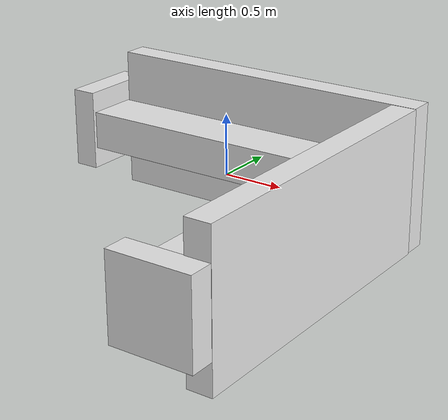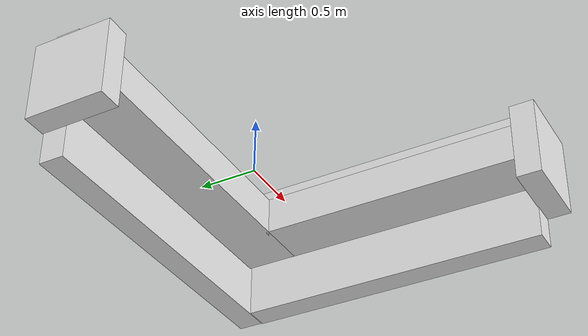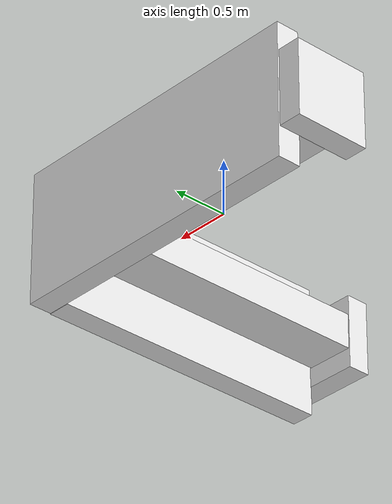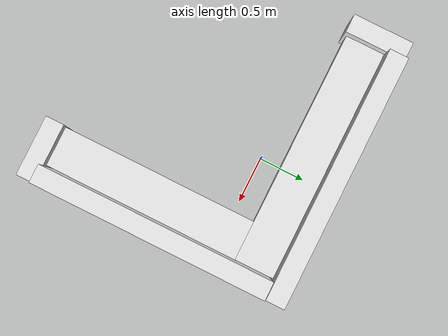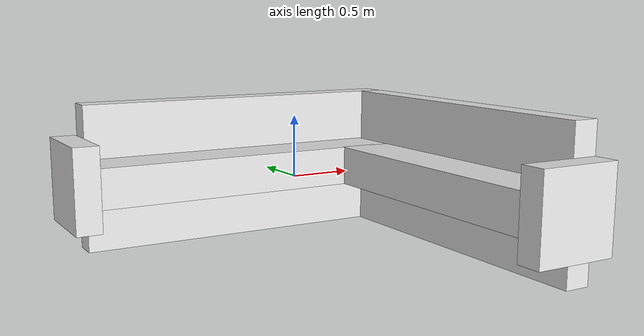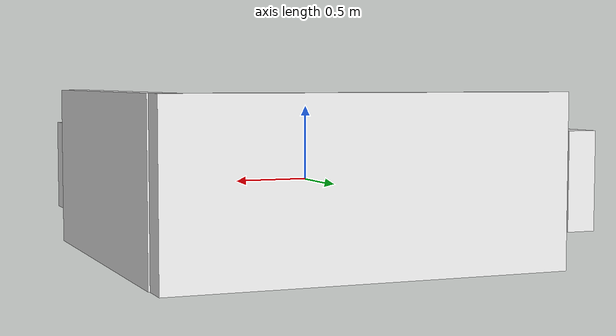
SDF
<?xml version='1.0'?>
<sdf version='1.6'>
  <model name='Sofa'>
    <link name='link_0'>
      <inertial>
        <mass>0.382123</mass>
        <inertia>
          <ixx>0.00968354</ixx>
          <ixy>0</ixy>
          <ixz>0</ixz>
          <iyy>0.225764</iyy>
          <iyz>0</iyz>
          <izz>0.228759</izz>
        </inertia>
        <pose frame=''>0 0 0 0 -0 0</pose>
      </inertial>
      <pose frame=''>-0.25228 0.450008 0 0 -0 0</pose>
      <gravity>1</gravity>
      <self_collide>0</self_collide>
      <kinematic>0</kinematic>
      <enable_wind>0</enable_wind>
      <visual name='visual'>
        <pose frame=''>0 0 0 0 -0 0</pose>
        <geometry>
          <box>
            <size>2.64287 0.446181 0.324067</size>
          </box>
        </geometry>
        <material>
          <lighting>1</lighting>
          <script>
            <uri>file://media/materials/scripts/gazebo.material</uri>
            <name>Gazebo/White</name>
          </script>
          <shader type='vertex'>
            <normal_map>__default__</normal_map>
          </shader>
          <ambient>1 1 1 1</ambient>
          <diffuse>1 1 1 1</diffuse>
          <specular>0 0 0 1</specular>
          <emissive>0 0 0 1</emissive>
        </material>
        <transparency>0</transparency>
        <cast_shadows>1</cast_shadows>
      </visual>
      <collision name='collision'>
        <laser_retro>0</laser_retro>
        <max_contacts>10</max_contacts>
        <pose frame=''>0 0 0 0 -0 0</pose>
        <geometry>
          <box>
            <size>2.64287 0.446181 0.324067</size>
          </box>
        </geometry>
        <surface>
          <friction>
            <ode>
              <mu>1</mu>
              <mu2>1</mu2>
              <fdir1>0 0 0</fdir1>
              <slip1>0</slip1>
              <slip2>0</slip2>
            </ode>
            <torsional>
              <coefficient>1</coefficient>
              <patch_radius>0</patch_radius>
              <surface_radius>0</surface_radius>
              <use_patch_radius>1</use_patch_radius>
              <ode>
                <slip>0</slip>
              </ode>
            </torsional>
          </friction>
          <bounce>
            <restitution_coefficient>0</restitution_coefficient>
            <threshold>1e+06</threshold>
          </bounce>
          <contact>
            <collide_without_contact>0</collide_without_contact>
            <collide_without_contact_bitmask>1</collide_without_contact_bitmask>
            <collide_bitmask>1</collide_bitmask>
            <ode>
              <soft_cfm>0</soft_cfm>
              <soft_erp>0.2</soft_erp>
              <kp>1e+13</kp>
              <kd>1</kd>
              <max_vel>0.01</max_vel>
              <min_depth>0</min_depth>
            </ode>
            <bullet>
              <split_impulse>1</split_impulse>
              <split_impulse_penetration_threshold>-0.01</split_impulse_penetration_threshold>
              <soft_cfm>0</soft_cfm>
              <soft_erp>0.2</soft_erp>
              <kp>1e+13</kp>
              <kd>1</kd>
            </bullet>
          </contact>
        </surface>
      </collision>
    </link>
    <link name='link_0_clone'>
      <inertial>
        <mass>0.323082</mass>
        <inertia>
          <ixx>0.00818734</ixx>
          <ixy>0</ixy>
          <ixz>0</ixz>
          <iyy>0.137259</iyy>
          <iyz>0</iyz>
          <izz>0.139791</izz>
        </inertia>
        <pose frame=''>0 0 0 0 -0 0</pose>
      </inertial>
      <pose frame=''>0.848339 -0.864123 0 0 -0 1.5708</pose>
      <gravity>1</gravity>
      <self_collide>0</self_collide>
      <kinematic>0</kinematic>
      <enable_wind>0</enable_wind>
      <visual name='visual'>
        <pose frame=''>0 0 0 0 -0 0</pose>
        <geometry>
          <box>
            <size>2.23452 0.446181 0.324067</size>
          </box>
        </geometry>
        <material>
          <lighting>1</lighting>
          <script>
            <uri>file://media/materials/scripts/gazebo.material</uri>
            <name>Gazebo/White</name>
          </script>
          <shader type='vertex'>
            <normal_map>__default__</normal_map>
          </shader>
          <ambient>1 1 1 1</ambient>
          <diffuse>1 1 1 1</diffuse>
          <specular>0 0 0 1</specular>
          <emissive>0 0 0 1</emissive>
        </material>
        <transparency>0</transparency>
        <cast_shadows>1</cast_shadows>
      </visual>
      <collision name='collision'>
        <laser_retro>0</laser_retro>
        <max_contacts>10</max_contacts>
        <pose frame=''>0 0 0 0 -0 0</pose>
        <geometry>
          <box>
            <size>2.23452 0.446181 0.324067</size>
          </box>
        </geometry>
        <surface>
          <friction>
            <ode>
              <mu>1</mu>
              <mu2>1</mu2>
              <fdir1>0 0 0</fdir1>
              <slip1>0</slip1>
              <slip2>0</slip2>
            </ode>
            <torsional>
              <coefficient>1</coefficient>
              <patch_radius>0</patch_radius>
              <surface_radius>0</surface_radius>
              <use_patch_radius>1</use_patch_radius>
              <ode>
                <slip>0</slip>
              </ode>
            </torsional>
          </friction>
          <bounce>
            <restitution_coefficient>0</restitution_coefficient>
            <threshold>1e+06</threshold>
          </bounce>
          <contact>
            <collide_without_contact>0</collide_without_contact>
            <collide_without_contact_bitmask>1</collide_without_contact_bitmask>
            <collide_bitmask>1</collide_bitmask>
            <ode>
              <soft_cfm>0</soft_cfm>
              <soft_erp>0.2</soft_erp>
              <kp>1e+13</kp>
              <kd>1</kd>
              <max_vel>0.01</max_vel>
              <min_depth>0</min_depth>
            </ode>
            <bullet>
              <split_impulse>1</split_impulse>
              <split_impulse_penetration_threshold>-0.01</split_impulse_penetration_threshold>
              <soft_cfm>0</soft_cfm>
              <soft_erp>0.2</soft_erp>
              <kp>1e+13</kp>
              <kd>1</kd>
            </bullet>
          </contact>
        </surface>
      </collision>
    </link>
    <link name='link_0_clone_clone'>
      <inertial>
        <mass>0.667196</mass>
        <inertia>
          <ixx>0.0832171</ixx>
          <ixy>0</ixy>
          <ixz>0</ixz>
          <iyy>0.469129</iyy>
          <iyz>0</iyz>
          <izz>0.390789</izz>
        </inertia>
        <pose frame=''>0 0 0 0 -0 0</pose>
      </inertial>
      <pose frame=''>1.18863 -0.659087 0 0 -0 1.5708</pose>
      <gravity>1</gravity>
      <self_collide>0</self_collide>
      <kinematic>0</kinematic>
      <enable_wind>0</enable_wind>
      <visual name='visual'>
        <pose frame=''>0 0 0 0 -0 0</pose>
        <geometry>
          <box>
            <size>2.64287 0.209419 1.20535</size>
          </box>
        </geometry>
        <material>
          <lighting>1</lighting>
          <script>
            <uri>file://media/materials/scripts/gazebo.material</uri>
            <name>Gazebo/White</name>
          </script>
          <shader type='vertex'>
            <normal_map>__default__</normal_map>
          </shader>
          <ambient>1 1 1 1</ambient>
          <diffuse>1 1 1 1</diffuse>
          <specular>0 0 0 1</specular>
          <emissive>0 0 0 1</emissive>
        </material>
        <transparency>0</transparency>
        <cast_shadows>1</cast_shadows>
      </visual>
      <collision name='collision'>
        <laser_retro>0</laser_retro>
        <max_contacts>10</max_contacts>
        <pose frame=''>0 0 0 0 -0 0</pose>
        <geometry>
          <box>
            <size>2.64287 0.209419 1.20535</size>
          </box>
        </geometry>
        <surface>
          <friction>
            <ode>
              <mu>1</mu>
              <mu2>1</mu2>
              <fdir1>0 0 0</fdir1>
              <slip1>0</slip1>
              <slip2>0</slip2>
            </ode>
            <torsional>
              <coefficient>1</coefficient>
              <patch_radius>0</patch_radius>
              <surface_radius>0</surface_radius>
              <use_patch_radius>1</use_patch_radius>
              <ode>
                <slip>0</slip>
              </ode>
            </torsional>
          </friction>
          <bounce>
            <restitution_coefficient>0</restitution_coefficient>
            <threshold>1e+06</threshold>
          </bounce>
          <contact>
            <collide_without_contact>0</collide_without_contact>
            <collide_without_contact_bitmask>1</collide_without_contact_bitmask>
            <collide_bitmask>1</collide_bitmask>
            <ode>
              <soft_cfm>0</soft_cfm>
              <soft_erp>0.2</soft_erp>
              <kp>1e+13</kp>
              <kd>1</kd>
              <max_vel>0.01</max_vel>
              <min_depth>0</min_depth>
            </ode>
            <bullet>
              <split_impulse>1</split_impulse>
              <split_impulse_penetration_threshold>-0.01</split_impulse_penetration_threshold>
              <soft_cfm>0</soft_cfm>
              <soft_erp>0.2</soft_erp>
              <kp>1e+13</kp>
              <kd>1</kd>
            </bullet>
          </contact>
        </surface>
      </collision>
    </link>
    <link name='link_0_clone_clone_clone'>
      <inertial>
        <mass>0.713396</mass>
        <inertia>
          <ixx>0.0889797</ixx>
          <ixy>0</ixy>
          <ixz>0</ixz>
          <iyy>0.56111</iyy>
          <iyz>0</iyz>
          <izz>0.477345</izz>
        </inertia>
        <pose frame=''>0 0 0 0 -0 0</pose>
      </inertial>
      <pose frame=''>-0.128734 0.772182 0 0 0 -3.14159</pose>
      <gravity>1</gravity>
      <self_collide>0</self_collide>
      <kinematic>0</kinematic>
      <enable_wind>0</enable_wind>
      <visual name='visual'>
        <pose frame=''>0 0 0 0 -0 0</pose>
        <geometry>
          <box>
            <size>2.82587 0.209419 1.20535</size>
          </box>
        </geometry>
        <material>
          <lighting>1</lighting>
          <script>
            <uri>file://media/materials/scripts/gazebo.material</uri>
            <name>Gazebo/White</name>
          </script>
          <shader type='vertex'>
            <normal_map>__default__</normal_map>
          </shader>
          <ambient>1 1 1 1</ambient>
          <diffuse>1 1 1 1</diffuse>
          <specular>0 0 0 1</specular>
          <emissive>0 0 0 1</emissive>
        </material>
        <transparency>0</transparency>
        <cast_shadows>1</cast_shadows>
      </visual>
      <collision name='collision'>
        <laser_retro>0</laser_retro>
        <max_contacts>10</max_contacts>
        <pose frame=''>0 0 0 0 -0 0</pose>
        <geometry>
          <box>
            <size>2.82587 0.209419 1.20535</size>
          </box>
        </geometry>
        <surface>
          <friction>
            <ode>
              <mu>1</mu>
              <mu2>1</mu2>
              <fdir1>0 0 0</fdir1>
              <slip1>0</slip1>
              <slip2>0</slip2>
            </ode>
            <torsional>
              <coefficient>1</coefficient>
              <patch_radius>0</patch_radius>
              <surface_radius>0</surface_radius>
              <use_patch_radius>1</use_patch_radius>
              <ode>
                <slip>0</slip>
              </ode>
            </torsional>
          </friction>
          <bounce>
            <restitution_coefficient>0</restitution_coefficient>
            <threshold>1e+06</threshold>
          </bounce>
          <contact>
            <collide_without_contact>0</collide_without_contact>
            <collide_without_contact_bitmask>1</collide_without_contact_bitmask>
            <collide_bitmask>1</collide_bitmask>
            <ode>
              <soft_cfm>0</soft_cfm>
              <soft_erp>0.2</soft_erp>
              <kp>1e+13</kp>
              <kd>1</kd>
              <max_vel>0.01</max_vel>
              <min_depth>0</min_depth>
            </ode>
            <bullet>
              <split_impulse>1</split_impulse>
              <split_impulse_penetration_threshold>-0.01</split_impulse_penetration_threshold>
              <soft_cfm>0</soft_cfm>
              <soft_erp>0.2</soft_erp>
              <kp>1e+13</kp>
              <kd>1</kd>
            </bullet>
          </contact>
        </surface>
      </collision>
    </link>
    <link name='link_0_clone_clone_clone_0'>
      <inertial>
        <mass>0.0952432</mass>
        <inertia>
          <ixx>0.00403229</ixx>
          <ixy>0</ixy>
          <ixz>0</ixz>
          <iyy>0.00732133</iyy>
          <iyz>0</iyz>
          <izz>0.00396607</izz>
        </inertia>
        <pose frame=''>0 0 0 0 -0 0</pose>
      </inertial>
      <pose frame=''>-1.65596 0.536024 0 0 -0 1.5708</pose>
      <gravity>1</gravity>
      <self_collide>0</self_collide>
      <kinematic>0</kinematic>
      <enable_wind>0</enable_wind>
      <visual name='visual'>
        <pose frame=''>0 0 0 0 -0 0</pose>
        <geometry>
          <box>
            <size>0.676053 0.20652 0.682196</size>
          </box>
        </geometry>
        <material>
          <lighting>1</lighting>
          <script>
            <uri>file://media/materials/scripts/gazebo.material</uri>
            <name>Gazebo/White</name>
          </script>
          <shader type='vertex'>
            <normal_map>__default__</normal_map>
          </shader>
          <ambient>1 1 1 1</ambient>
          <diffuse>1 1 1 1</diffuse>
          <specular>0 0 0 1</specular>
          <emissive>0 0 0 1</emissive>
        </material>
        <transparency>0</transparency>
        <cast_shadows>1</cast_shadows>
      </visual>
      <collision name='collision'>
        <laser_retro>0</laser_retro>
        <max_contacts>10</max_contacts>
        <pose frame=''>0 0 0 0 -0 0</pose>
        <geometry>
          <box>
            <size>0.676053 0.20652 0.682196</size>
          </box>
        </geometry>
        <surface>
          <friction>
            <ode>
              <mu>1</mu>
              <mu2>1</mu2>
              <fdir1>0 0 0</fdir1>
              <slip1>0</slip1>
              <slip2>0</slip2>
            </ode>
            <torsional>
              <coefficient>1</coefficient>
              <patch_radius>0</patch_radius>
              <surface_radius>0</surface_radius>
              <use_patch_radius>1</use_patch_radius>
              <ode>
                <slip>0</slip>
              </ode>
            </torsional>
          </friction>
          <bounce>
            <restitution_coefficient>0</restitution_coefficient>
            <threshold>1e+06</threshold>
          </bounce>
          <contact>
            <collide_without_contact>0</collide_without_contact>
            <collide_without_contact_bitmask>1</collide_without_contact_bitmask>
            <collide_bitmask>1</collide_bitmask>
            <ode>
              <soft_cfm>0</soft_cfm>
              <soft_erp>0.2</soft_erp>
              <kp>1e+13</kp>
              <kd>1</kd>
              <max_vel>0.01</max_vel>
              <min_depth>0</min_depth>
            </ode>
            <bullet>
              <split_impulse>1</split_impulse>
              <split_impulse_penetration_threshold>-0.01</split_impulse_penetration_threshold>
              <soft_cfm>0</soft_cfm>
              <soft_erp>0.2</soft_erp>
              <kp>1e+13</kp>
              <kd>1</kd>
            </bullet>
          </contact>
        </surface>
      </collision>
    </link>
    <link name='link_0_clone_clone_clone_0_clone'>
      <inertial>
        <mass>0.0952432</mass>
        <inertia>
          <ixx>0.00403229</ixx>
          <ixy>0</ixy>
          <ixz>0</ixz>
          <iyy>0.00732133</iyy>
          <iyz>0</iyz>
          <izz>0.00396607</izz>
        </inertia>
        <pose frame=''>0 0 0 0 -0 0</pose>
      </inertial>
      <pose frame=''>0.95309 -2.07683 0 0 -0 4e-06</pose>
      <gravity>1</gravity>
      <self_collide>0</self_collide>
      <kinematic>0</kinematic>
      <enable_wind>0</enable_wind>
      <visual name='visual'>
        <pose frame=''>0 0 0 0 -0 0</pose>
        <geometry>
          <box>
            <size>0.676053 0.20652 0.682196</size>
          </box>
        </geometry>
        <material>
          <lighting>1</lighting>
          <script>
            <uri>file://media/materials/scripts/gazebo.material</uri>
            <name>Gazebo/White</name>
          </script>
          <shader type='vertex'>
            <normal_map>__default__</normal_map>
          </shader>
          <ambient>1 1 1 1</ambient>
          <diffuse>1 1 1 1</diffuse>
          <specular>0 0 0 1</specular>
          <emissive>0 0 0 1</emissive>
        </material>
        <transparency>0</transparency>
        <cast_shadows>1</cast_shadows>
      </visual>
      <collision name='collision'>
        <laser_retro>0</laser_retro>
        <max_contacts>10</max_contacts>
        <pose frame=''>0 0 0 0 -0 0</pose>
        <geometry>
          <box>
            <size>0.676053 0.20652 0.682196</size>
          </box>
        </geometry>
        <surface>
          <friction>
            <ode>
              <mu>1</mu>
              <mu2>1</mu2>
              <fdir1>0 0 0</fdir1>
              <slip1>0</slip1>
              <slip2>0</slip2>
            </ode>
            <torsional>
              <coefficient>1</coefficient>
              <patch_radius>0</patch_radius>
              <surface_radius>0</surface_radius>
              <use_patch_radius>1</use_patch_radius>
              <ode>
                <slip>0</slip>
              </ode>
            </torsional>
          </friction>
          <bounce>
            <restitution_coefficient>0</restitution_coefficient>
            <threshold>1e+06</threshold>
          </bounce>
          <contact>
            <collide_without_contact>0</collide_without_contact>
            <collide_without_contact_bitmask>1</collide_without_contact_bitmask>
            <collide_bitmask>1</collide_bitmask>
            <ode>
              <soft_cfm>0</soft_cfm>
              <soft_erp>0.2</soft_erp>
              <kp>1e+13</kp>
              <kd>1</kd>
              <max_vel>0.01</max_vel>
              <min_depth>0</min_depth>
            </ode>
            <bullet>
              <split_impulse>1</split_impulse>
              <split_impulse_penetration_threshold>-0.01</split_impulse_penetration_threshold>
              <soft_cfm>0</soft_cfm>
              <soft_erp>0.2</soft_erp>
              <kp>1e+13</kp>
              <kd>1</kd>
            </bullet>
          </contact>
        </surface>
      </collision>
    </link>
    <static>1</static>
    <allow_auto_disable>1</allow_auto_disable>
  </model>
</sdf>
